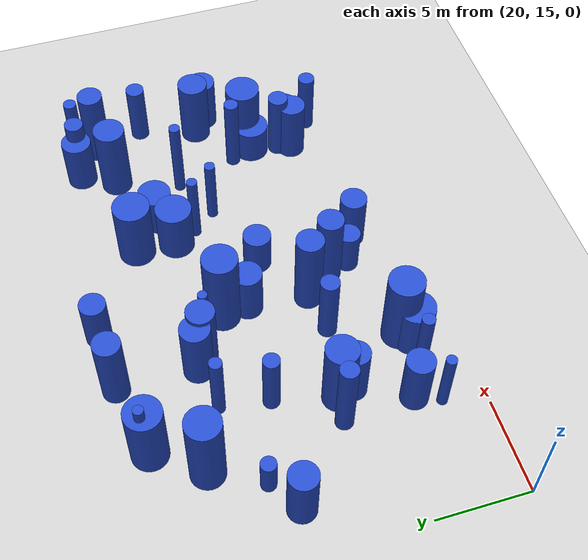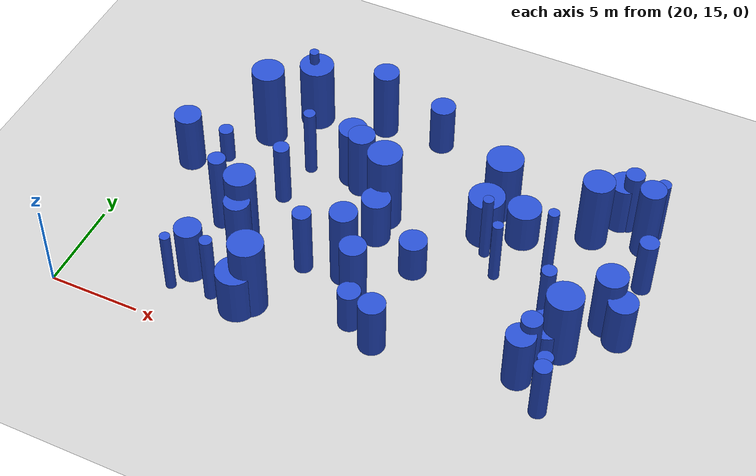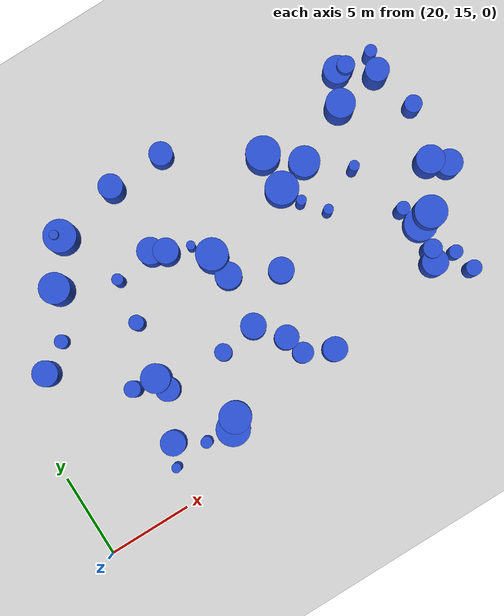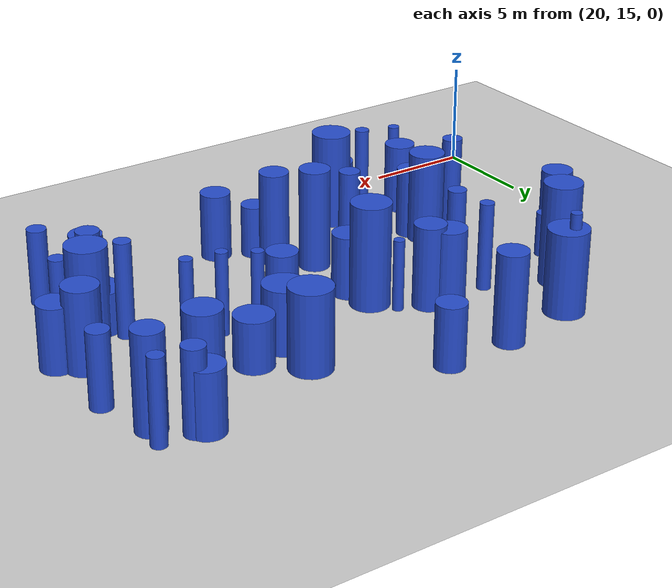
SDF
<sdf version="1.6">
 <world name="default">
  <model name="ground_plane">
   <static>1</static>
   <link name="link">
    <collision name="collision">
     <geometry><plane><normal>0 0 1</normal><size>100 100</size></plane></geometry>
     <surface><friction><ode><mu>100</mu><mu2>50</mu2></ode></friction></surface>
    </collision>
    <visual name="visual">
     <cast_shadows>0</cast_shadows>
     <geometry><plane><normal>0 0 1</normal><size>100 100</size></plane></geometry>
     <material>
      <script><uri>file://media/materials/scripts/gazebo.material</uri><name>Gazebo/Grey</name></script>
     </material>
    </visual>
   </link>
  </model>
  <model name="12">
   <static>0</static>
   <link name="link">
    <inertial>
     <mass>2</mass>
     <inertia><ixx>2.16856</ixx><ixy>0</ixy><ixz>0</ixz><iyy>2.16856</iyy><iyz>0</iyz><izz>0.502649</izz></inertia>
    </inertial>
    <collision name="collision">
     <geometry><cylinder><length>3.39167</length><radius>0.708978</radius></cylinder></geometry>
     <surface><contact><collide_without_contact>1</collide_without_contact></contact></surface>
    </collision>
    <visual name="visual">
     <geometry><cylinder><length>3.39167</length><radius>0.708978</radius></cylinder></geometry>
     <material>
      <script><uri>file://media/materials/scripts/gazebo.material</uri><name>Gazebo/Blue</name></script>
     </material>
    </visual>
    <gravity>0</gravity>
   </link>
   <pose>27.6973 21.2651 1.69583 0 -0 0</pose>
  </model>
  <model name="18">
   <static>0</static>
   <link name="link">
    <inertial>
     <mass>2</mass>
     <inertia>
      <ixx>0.856917</ixx>
      <ixy>0</ixy>
      <ixz>0</ixz>
      <iyy>0.856917</iyy>
      <iyz>0</iyz>
      <izz>0.164802</izz>
     </inertia>
    </inertial>
    <collision name="collision">
     <geometry><cylinder><length>2.15571</length><radius>0.405958</radius></cylinder></geometry>
     <surface><contact><collide_without_contact>1</collide_without_contact></contact></surface>
    </collision>
    <visual name="visual">
     <geometry><cylinder><length>2.15571</length><radius>0.405958</radius></cylinder></geometry>
     <material>
      <script><uri>file://media/materials/scripts/gazebo.material</uri><name>Gazebo/Blue</name></script>
     </material>
    </visual>
    <gravity>0</gravity>
   </link>
   <pose>23.9671 26.7785 1.07786 0 -0 0</pose>
  </model>
  <model name="22">
   <static>0</static>
   <link name="link">
    <inertial>
     <mass>2</mass>
     <inertia><ixx>1.74504</ixx><ixy>0</ixy><ixz>0</ixz><iyy>1.74504</iyy><iyz>0</iyz><izz>0.480682</izz></inertia>
    </inertial>
    <collision name="collision">
     <geometry><cylinder><length>3.00469</length><radius>0.693313</radius></cylinder></geometry>
     <surface><contact><collide_without_contact>1</collide_without_contact></contact></surface>
    </collision>
    <visual name="visual">
     <geometry><cylinder><length>3.00469</length><radius>0.693313</radius></cylinder></geometry>
     <material>
      <script><uri>file://media/materials/scripts/gazebo.material</uri><name>Gazebo/Blue</name></script>
     </material>
    </visual>
    <gravity>0</gravity>
   </link>
   <pose>34.3942 32.773 1.50235 0 -0 0</pose>
  </model>
  <model name="27">
   <static>0</static>
   <link name="link">
    <inertial>
     <mass>2</mass>
     <inertia><ixx>3.49238</ixx><ixy>0</ixy><ixz>0</ixz><iyy>3.49238</iyy><iyz>0</iyz><izz>0.155393</izz></inertia>
    </inertial>
    <collision name="collision">
     <geometry><cylinder><length>4.52638</length><radius>0.394199</radius></cylinder></geometry>
     <surface><contact><collide_without_contact>1</collide_without_contact></contact></surface>
    </collision>
    <visual name="visual">
     <geometry><cylinder><length>4.52638</length><radius>0.394199</radius></cylinder></geometry>
     <material>
      <script><uri>file://media/materials/scripts/gazebo.material</uri><name>Gazebo/Blue</name></script>
     </material>
    </visual>
    <gravity>0</gravity>
   </link>
   <pose>44.2707 22.8518 2.26319 0 -0 0</pose>
  </model>
  <model name="31">
   <static>0</static>
   <link name="link">
    <inertial>
     <mass>2</mass>
     <inertia>
      <ixx>2.64859</ixx>
      <ixy>0</ixy>
      <ixz>0</ixz>
      <iyy>2.64859</iyy>
      <iyz>0</iyz>
      <izz>0.0843179</izz>
     </inertia>
    </inertial>
    <collision name="collision">
     <geometry><cylinder><length>3.95456</length><radius>0.290376</radius></cylinder></geometry>
     <surface><contact><collide_without_contact>1</collide_without_contact></contact></surface>
    </collision>
    <visual name="visual">
     <geometry><cylinder><length>3.95456</length><radius>0.290376</radius></cylinder></geometry>
     <material>
      <script><uri>file://media/materials/scripts/gazebo.material</uri><name>Gazebo/Blue</name></script>
     </material>
    </visual>
    <gravity>0</gravity>
   </link>
   <pose>40.7251 25.0415 1.97728 0 -0 0</pose>
  </model>
  <model name="40">
   <static>0</static>
   <link name="link">
    <inertial>
     <mass>2</mass>
     <inertia><ixx>3.64768</ixx><ixy>0</ixy><ixz>0</ixz><iyy>3.64768</iyy><iyz>0</iyz><izz>0.726786</izz></inertia>
    </inertial>
    <collision name="collision">
     <geometry><cylinder><length>4.43911</length><radius>0.852518</radius></cylinder></geometry>
     <surface><contact><collide_without_contact>1</collide_without_contact></contact></surface>
    </collision>
    <visual name="visual">
     <geometry><cylinder><length>4.43911</length><radius>0.852518</radius></cylinder></geometry>
     <material>
      <script><uri>file://media/materials/scripts/gazebo.material</uri><name>Gazebo/Blue</name></script>
     </material>
    </visual>
    <gravity>0</gravity>
   </link>
   <pose>27.4642 22.1166 2.21956 0 -0 0</pose>
  </model>
  <model name="41">
   <static>0</static>
   <link name="link">
    <inertial>
     <mass>2</mass>
     <inertia><ixx>2.97421</ixx><ixy>0</ixy><ixz>0</ixz><iyy>2.97421</iyy><iyz>0</iyz><izz>0.995933</izz></inertia>
    </inertial>
    <collision name="collision">
     <geometry><cylinder><length>3.85453</length><radius>0.997964</radius></cylinder></geometry>
     <surface><contact><collide_without_contact>1</collide_without_contact></contact></surface>
    </collision>
    <visual name="visual">
     <geometry><cylinder><length>3.85453</length><radius>0.997964</radius></cylinder></geometry>
     <material>
      <script><uri>file://media/materials/scripts/gazebo.material</uri><name>Gazebo/Blue</name></script>
     </material>
    </visual>
    <gravity>0</gravity>
   </link>
   <pose>39.2735 29.6655 1.92727 0 -0 0</pose>
  </model>
  <model name="54">
   <static>0</static>
   <link name="link">
    <inertial>
     <mass>2</mass>
     <inertia><ixx>1.37638</ixx><ixy>0</ixy><ixz>0</ixz><iyy>1.37638</iyy><iyz>0</iyz><izz>0.821688</izz></inertia>
    </inertial>
    <collision name="collision">
     <geometry><cylinder><length>2.40691</length><radius>0.90647</radius></cylinder></geometry>
     <surface><contact><collide_without_contact>1</collide_without_contact></contact></surface>
    </collision>
    <visual name="visual">
     <geometry><cylinder><length>2.40691</length><radius>0.90647</radius></cylinder></geometry>
     <material>
      <script><uri>file://media/materials/scripts/gazebo.material</uri><name>Gazebo/Blue</name></script>
     </material>
    </visual>
    <gravity>0</gravity>
   </link>
   <pose>41.0887 28.1338 1.20345 0 -0 0</pose>
  </model>
  <model name="55">
   <static>0</static>
   <link name="link">
    <inertial>
     <mass>2</mass>
     <inertia><ixx>2.32083</ixx><ixy>0</ixy><ixz>0</ixz><iyy>2.32083</iyy><iyz>0</iyz><izz>0.590697</izz></inertia>
    </inertial>
    <collision name="collision">
     <geometry><cylinder><length>3.4861</length><radius>0.768568</radius></cylinder></geometry>
     <surface><contact><collide_without_contact>1</collide_without_contact></contact></surface>
    </collision>
    <visual name="visual">
     <geometry><cylinder><length>3.4861</length><radius>0.768568</radius></cylinder></geometry>
     <material>
      <script><uri>file://media/materials/scripts/gazebo.material</uri><name>Gazebo/Blue</name></script>
     </material>
    </visual>
    <gravity>0</gravity>
   </link>
   <pose>44.2646 19.3378 1.74305 0 -0 0</pose>
  </model>
  <model name="60">
   <static>0</static>
   <link name="link">
    <inertial>
     <mass>2</mass>
     <inertia><ixx>2.57815</ixx><ixy>0</ixy><ixz>0</ixz><iyy>2.57815</iyy><iyz>0</iyz><izz>0.193232</izz></inertia>
    </inertial>
    <collision name="collision">
     <geometry><cylinder><length>3.85866</length><radius>0.439582</radius></cylinder></geometry>
     <surface><contact><collide_without_contact>1</collide_without_contact></contact></surface>
    </collision>
    <visual name="visual">
     <geometry><cylinder><length>3.85866</length><radius>0.439582</radius></cylinder></geometry>
     <material>
      <script><uri>file://media/materials/scripts/gazebo.material</uri><name>Gazebo/Blue</name></script>
     </material>
    </visual>
    <gravity>0</gravity>
   </link>
   <pose>28.194 25.362 1.92933 0 -0 0</pose>
  </model>
  <model name="61">
   <static>0</static>
   <link name="link">
    <inertial>
     <mass>2</mass>
     <inertia><ixx>3.67295</ixx><ixy>0</ixy><ixz>0</ixz><iyy>3.67295</iyy><iyz>0</iyz><izz>0.479823</izz></inertia>
    </inertial>
    <collision name="collision">
     <geometry><cylinder><length>4.53853</length><radius>0.692692</radius></cylinder></geometry>
     <surface><contact><collide_without_contact>1</collide_without_contact></contact></surface>
    </collision>
    <visual name="visual">
     <geometry><cylinder><length>4.53853</length><radius>0.692692</radius></cylinder></geometry>
     <material>
      <script><uri>file://media/materials/scripts/gazebo.material</uri><name>Gazebo/Blue</name></script>
     </material>
    </visual>
    <gravity>0</gravity>
   </link>
   <pose>47.1633 30.2094 2.26926 0 -0 0</pose>
  </model>
  <model name="70">
   <static>0</static>
   <link name="link">
    <inertial>
     <mass>2</mass>
     <inertia><ixx>3.66577</ixx><ixy>0</ixy><ixz>0</ixz><iyy>3.66577</iyy><iyz>0</iyz><izz>0.497393</izz></inertia>
    </inertial>
    <collision name="collision">
     <geometry><cylinder><length>4.52796</length><radius>0.705261</radius></cylinder></geometry>
     <surface><contact><collide_without_contact>1</collide_without_contact></contact></surface>
    </collision>
    <visual name="visual">
     <geometry><cylinder><length>4.52796</length><radius>0.705261</radius></cylinder></geometry>
     <material>
      <script><uri>file://media/materials/scripts/gazebo.material</uri><name>Gazebo/Blue</name></script>
     </material>
    </visual>
    <gravity>0</gravity>
   </link>
   <pose>34.9107 20.1823 2.26398 0 -0 0</pose>
  </model>
  <model name="76">
   <static>0</static>
   <link name="link">
    <inertial>
     <mass>2</mass>
     <inertia>
      <ixx>3.85305</ixx>
      <ixy>0</ixy>
      <ixz>0</ixz>
      <iyy>3.85305</iyy>
      <iyz>0</iyz>
      <izz>0.0917923</izz>
     </inertia>
    </inertial>
    <collision name="collision">
     <geometry><cylinder><length>4.77943</length><radius>0.302972</radius></cylinder></geometry>
     <surface><contact><collide_without_contact>1</collide_without_contact></contact></surface>
    </collision>
    <visual name="visual">
     <geometry><cylinder><length>4.77943</length><radius>0.302972</radius></cylinder></geometry>
     <material>
      <script><uri>file://media/materials/scripts/gazebo.material</uri><name>Gazebo/Blue</name></script>
     </material>
    </visual>
    <gravity>0</gravity>
   </link>
   <pose>43.1827 26.3124 2.38971 0 -0 0</pose>
  </model>
  <model name="83">
   <static>0</static>
   <link name="link">
    <inertial>
     <mass>2</mass>
     <inertia><ixx>1.1459</ixx><ixy>0</ixy><ixz>0</ixz><iyy>1.1459</iyy><iyz>0</iyz><izz>0.941021</izz></inertia>
    </inertial>
    <collision name="collision">
     <geometry><cylinder><length>2.01304</length><radius>0.970062</radius></cylinder></geometry>
     <surface><contact><collide_without_contact>1</collide_without_contact></contact></surface>
    </collision>
    <visual name="visual">
     <geometry><cylinder><length>2.01304</length><radius>0.970062</radius></cylinder></geometry>
     <material>
      <script><uri>file://media/materials/scripts/gazebo.material</uri><name>Gazebo/Blue</name></script>
     </material>
    </visual>
    <gravity>0</gravity>
   </link>
   <pose>44.8178 21.6069 1.00652 0 -0 0</pose>
  </model>
  <model name="91">
   <static>0</static>
   <link name="link">
    <inertial>
     <mass>2</mass>
     <inertia><ixx>2.71113</ixx><ixy>0</ixy><ixz>0</ixz><iyy>2.71113</iyy><iyz>0</iyz><izz>0.613025</izz></inertia>
    </inertial>
    <collision name="collision">
     <geometry><cylinder><length>3.79838</length><radius>0.782959</radius></cylinder></geometry>
     <surface><contact><collide_without_contact>1</collide_without_contact></contact></surface>
    </collision>
    <visual name="visual">
     <geometry><cylinder><length>3.79838</length><radius>0.782959</radius></cylinder></geometry>
     <material>
      <script><uri>file://media/materials/scripts/gazebo.material</uri><name>Gazebo/Blue</name></script>
     </material>
    </visual>
    <gravity>0</gravity>
   </link>
   <pose>30.988 28.3636 1.89919 0 -0 0</pose>
  </model>
  <model name="92">
   <static>0</static>
   <link name="link">
    <inertial>
     <mass>2</mass>
     <inertia><ixx>2.81245</ixx><ixy>0</ixy><ixz>0</ixz><iyy>2.81245</iyy><iyz>0</iyz><izz>0.301857</izz></inertia>
    </inertial>
    <collision name="collision">
     <geometry><cylinder><length>3.99614</length><radius>0.549415</radius></cylinder></geometry>
     <surface><contact><collide_without_contact>1</collide_without_contact></contact></surface>
    </collision>
    <visual name="visual">
     <geometry><cylinder><length>3.99614</length><radius>0.549415</radius></cylinder></geometry>
     <material>
      <script><uri>file://media/materials/scripts/gazebo.material</uri><name>Gazebo/Blue</name></script>
     </material>
    </visual>
    <gravity>0</gravity>
   </link>
   <pose>44.5098 20.0687 1.99807 0 -0 0</pose>
  </model>
  <model name="97">
   <static>0</static>
   <link name="link">
    <inertial>
     <mass>2</mass>
     <inertia><ixx>1.88861</ixx><ixy>0</ixy><ixz>0</ixz><iyy>1.88861</iyy><iyz>0</iyz><izz>0.605954</izz></inertia>
    </inertial>
    <collision name="collision">
     <geometry><cylinder><length>3.08444</length><radius>0.778431</radius></cylinder></geometry>
     <surface><contact><collide_without_contact>1</collide_without_contact></contact></surface>
    </collision>
    <visual name="visual">
     <geometry><cylinder><length>3.08444</length><radius>0.778431</radius></cylinder></geometry>
     <material>
      <script><uri>file://media/materials/scripts/gazebo.material</uri><name>Gazebo/Blue</name></script>
     </material>
    </visual>
    <gravity>0</gravity>
   </link>
   <pose>47.974 23.6926 1.54222 0 -0 0</pose>
  </model>
  <model name="98">
   <static>0</static>
   <link name="link">
    <inertial>
     <mass>2</mass>
     <inertia><ixx>1.86574</ixx><ixy>0</ixy><ixz>0</ixz><iyy>1.86574</iyy><iyz>0</iyz><izz>0.667431</izz></inertia>
    </inertial>
    <collision name="collision">
     <geometry><cylinder><length>3.03186</length><radius>0.816965</radius></cylinder></geometry>
     <surface><contact><collide_without_contact>1</collide_without_contact></contact></surface>
    </collision>
    <visual name="visual">
     <geometry><cylinder><length>3.03186</length><radius>0.816965</radius></cylinder></geometry>
     <material>
      <script><uri>file://media/materials/scripts/gazebo.material</uri><name>Gazebo/Blue</name></script>
     </material>
    </visual>
    <gravity>0</gravity>
   </link>
   <pose>45.397 31.5197 1.51593 0 -0 0</pose>
  </model>
  <model name="105">
   <static>0</static>
   <link name="link">
    <inertial>
     <mass>2</mass>
     <inertia><ixx>2.88866</ixx><ixy>0</ixy><ixz>0</ixz><iyy>2.88866</iyy><iyz>0</iyz><izz>0.686861</izz></inertia>
    </inertial>
    <collision name="collision">
     <geometry><cylinder><length>3.90786</length><radius>0.828771</radius></cylinder></geometry>
     <surface><contact><collide_without_contact>1</collide_without_contact></contact></surface>
    </collision>
    <visual name="visual">
     <geometry><cylinder><length>3.90786</length><radius>0.828771</radius></cylinder></geometry>
     <material>
      <script><uri>file://media/materials/scripts/gazebo.material</uri><name>Gazebo/Blue</name></script>
     </material>
    </visual>
    <gravity>0</gravity>
   </link>
   <pose>47.0756 24.3872 1.95393 0 -0 0</pose>
  </model>
  <model name="119">
   <static>0</static>
   <link name="link">
    <inertial>
     <mass>2</mass>
     <inertia><ixx>1.78265</ixx><ixy>0</ixy><ixz>0</ixz><iyy>1.78265</iyy><iyz>0</iyz><izz>0.442677</izz></inertia>
    </inertial>
    <collision name="collision">
     <geometry><cylinder><length>3.0607</length><radius>0.66534</radius></cylinder></geometry>
     <surface><contact><collide_without_contact>1</collide_without_contact></contact></surface>
    </collision>
    <visual name="visual">
     <geometry><cylinder><length>3.0607</length><radius>0.66534</radius></cylinder></geometry>
     <material>
      <script><uri>file://media/materials/scripts/gazebo.material</uri><name>Gazebo/Blue</name></script>
     </material>
    </visual>
    <gravity>0</gravity>
   </link>
   <pose>44.3315 29.6347 1.53035 0 -0 0</pose>
  </model>
  <model name="121">
   <static>0</static>
   <link name="link">
    <inertial>
     <mass>2</mass>
     <inertia><ixx>4.12307</ixx><ixy>0</ixy><ixz>0</ixz><iyy>4.12307</iyy><iyz>0</iyz><izz>0.229508</izz></inertia>
    </inertial>
    <collision name="collision">
     <geometry><cylinder><length>4.90407</length><radius>0.47907</radius></cylinder></geometry>
     <surface><contact><collide_without_contact>1</collide_without_contact></contact></surface>
    </collision>
    <visual name="visual">
     <geometry><cylinder><length>4.90407</length><radius>0.47907</radius></cylinder></geometry>
     <material>
      <script><uri>file://media/materials/scripts/gazebo.material</uri><name>Gazebo/Blue</name></script>
     </material>
    </visual>
    <gravity>0</gravity>
   </link>
   <pose>26.0768 22.2822 2.45204 0 -0 0</pose>
  </model>
  <model name="125">
   <static>0</static>
   <link name="link">
    <inertial>
     <mass>2</mass>
     <inertia><ixx>3.0469</ixx><ixy>0</ixy><ixz>0</ixz><iyy>3.0469</iyy><iyz>0</iyz><izz>0.117307</izz></inertia>
    </inertial>
    <collision name="collision">
     <geometry><cylinder><length>4.23432</length><radius>0.342501</radius></cylinder></geometry>
     <surface><contact><collide_without_contact>1</collide_without_contact></contact></surface>
    </collision>
    <visual name="visual">
     <geometry><cylinder><length>4.23432</length><radius>0.342501</radius></cylinder></geometry>
     <material>
      <script><uri>file://media/materials/scripts/gazebo.material</uri><name>Gazebo/Blue</name></script>
     </material>
    </visual>
    <gravity>0</gravity>
   </link>
   <pose>27.9986 17.5734 2.11716 0 -0 0</pose>
  </model>
  <model name="129">
   <static>0</static>
   <link name="link">
    <inertial>
     <mass>2</mass>
     <inertia><ixx>2.30241</ixx><ixy>0</ixy><ixz>0</ixz><iyy>2.30241</iyy><iyz>0</iyz><izz>0.209643</izz></inertia>
    </inertial>
    <collision name="collision">
     <geometry><cylinder><length>3.63118</length><radius>0.457868</radius></cylinder></geometry>
     <surface><contact><collide_without_contact>1</collide_without_contact></contact></surface>
    </collision>
    <visual name="visual">
     <geometry><cylinder><length>3.63118</length><radius>0.457868</radius></cylinder></geometry>
     <material>
      <script><uri>file://media/materials/scripts/gazebo.material</uri><name>Gazebo/Blue</name></script>
     </material>
    </visual>
    <gravity>0</gravity>
   </link>
   <pose>45.9307 17.922 1.81559 0 -0 0</pose>
  </model>
  <model name="133">
   <static>0</static>
   <link name="link">
    <inertial>
     <mass>2</mass>
     <inertia><ixx>3.4341</ixx><ixy>0</ixy><ixz>0</ixz><iyy>3.4341</iyy><iyz>0</iyz><izz>0.510052</izz></inertia>
    </inertial>
    <collision name="collision">
     <geometry><cylinder><length>4.36743</length><radius>0.714179</radius></cylinder></geometry>
     <surface><contact><collide_without_contact>1</collide_without_contact></contact></surface>
    </collision>
    <visual name="visual">
     <geometry><cylinder><length>4.36743</length><radius>0.714179</radius></cylinder></geometry>
     <material>
      <script><uri>file://media/materials/scripts/gazebo.material</uri><name>Gazebo/Blue</name></script>
     </material>
    </visual>
    <gravity>0</gravity>
   </link>
   <pose>31.014 32.5884 2.18371 0 -0 0</pose>
  </model>
  <model name="135">
   <static>0</static>
   <link name="link">
    <inertial>
     <mass>2</mass>
     <inertia><ixx>3.2239</ixx><ixy>0</ixy><ixz>0</ixz><iyy>3.2239</iyy><iyz>0</iyz><izz>0.913912</izz></inertia>
    </inertial>
    <collision name="collision">
     <geometry><cylinder><length>4.07451</length><radius>0.955988</radius></cylinder></geometry>
     <surface><contact><collide_without_contact>1</collide_without_contact></contact></surface>
    </collision>
    <visual name="visual">
     <geometry><cylinder><length>4.07451</length><radius>0.955988</radius></cylinder></geometry>
     <material>
      <script><uri>file://media/materials/scripts/gazebo.material</uri><name>Gazebo/Blue</name></script>
     </material>
    </visual>
    <gravity>0</gravity>
   </link>
   <pose>27.1253 31.7575 2.03726 0 -0 0</pose>
  </model>
  <model name="136">
   <static>0</static>
   <link name="link">
    <inertial>
     <mass>2</mass>
     <inertia><ixx>1.26179</ixx><ixy>0</ixy><ixz>0</ixz><iyy>1.26179</iyy><iyz>0</iyz><izz>0.374981</izz></inertia>
    </inertial>
    <collision name="collision">
     <geometry><cylinder><length>2.53885</length><radius>0.612357</radius></cylinder></geometry>
     <surface><contact><collide_without_contact>1</collide_without_contact></contact></surface>
    </collision>
    <visual name="visual">
     <geometry><cylinder><length>2.53885</length><radius>0.612357</radius></cylinder></geometry>
     <material>
      <script><uri>file://media/materials/scripts/gazebo.material</uri><name>Gazebo/Blue</name></script>
     </material>
    </visual>
    <gravity>0</gravity>
   </link>
   <pose>35.2739 18.9705 1.26943 0 -0 0</pose>
  </model>
  <model name="138">
   <static>0</static>
   <link name="link">
    <inertial>
     <mass>2</mass>
     <inertia><ixx>2.25397</ixx><ixy>0</ixy><ixz>0</ixz><iyy>2.25397</iyy><iyz>0</iyz><izz>0.541062</izz></inertia>
    </inertial>
    <collision name="collision">
     <geometry><cylinder><length>3.44973</length><radius>0.735569</radius></cylinder></geometry>
     <surface><contact><collide_without_contact>1</collide_without_contact></contact></surface>
    </collision>
    <visual name="visual">
     <geometry><cylinder><length>3.44973</length><radius>0.735569</radius></cylinder></geometry>
     <material>
      <script><uri>file://media/materials/scripts/gazebo.material</uri><name>Gazebo/Blue</name></script>
     </material>
    </visual>
    <gravity>0</gravity>
   </link>
   <pose>26.3564 18.5234 1.72486 0 -0 0</pose>
  </model>
  <model name="143">
   <static>0</static>
   <link name="link">
    <inertial>
     <mass>2</mass>
     <inertia><ixx>3.53239</ixx><ixy>0</ixy><ixz>0</ixz><iyy>3.53239</iyy><iyz>0</iyz><izz>0.90512</izz></inertia>
    </inertial>
    <collision name="collision">
     <geometry><cylinder><length>4.29872</length><radius>0.951378</radius></cylinder></geometry>
     <surface><contact><collide_without_contact>1</collide_without_contact></contact></surface>
    </collision>
    <visual name="visual">
     <geometry><cylinder><length>4.29872</length><radius>0.951378</radius></cylinder></geometry>
     <material>
      <script><uri>file://media/materials/scripts/gazebo.material</uri><name>Gazebo/Blue</name></script>
     </material>
    </visual>
    <gravity>0</gravity>
   </link>
   <pose>45.5094 21.8679 2.14936 0 -0 0</pose>
  </model>
  <model name="145">
   <static>0</static>
   <link name="link">
    <inertial>
     <mass>2</mass>
     <inertia><ixx>2.22804</ixx><ixy>0</ixy><ixz>0</ixz><iyy>2.22804</iyy><iyz>0</iyz><izz>0.260787</izz></inertia>
    </inertial>
    <collision name="collision">
     <geometry><cylinder><length>3.54766</length><radius>0.510673</radius></cylinder></geometry>
     <surface><contact><collide_without_contact>1</collide_without_contact></contact></surface>
    </collision>
    <visual name="visual">
     <geometry><cylinder><length>3.54766</length><radius>0.510673</radius></cylinder></geometry>
     <material>
      <script><uri>file://media/materials/scripts/gazebo.material</uri><name>Gazebo/Blue</name></script>
     </material>
    </visual>
    <gravity>0</gravity>
   </link>
   <pose>47.96 27.5717 1.77383 0 -0 0</pose>
  </model>
  <model name="146">
   <static>0</static>
   <link name="link">
    <inertial>
     <mass>2</mass>
     <inertia><ixx>4.58001</ixx><ixy>0</ixy><ixz>0</ixz><iyy>4.58001</iyy><iyz>0</iyz><izz>0.876721</izz></inertia>
    </inertial>
    <collision name="collision">
     <geometry><cylinder><length>4.98497</length><radius>0.936334</radius></cylinder></geometry>
     <surface><contact><collide_without_contact>1</collide_without_contact></contact></surface>
    </collision>
    <visual name="visual">
     <geometry><cylinder><length>4.98497</length><radius>0.936334</radius></cylinder></geometry>
     <material>
      <script><uri>file://media/materials/scripts/gazebo.material</uri><name>Gazebo/Blue</name></script>
     </material>
    </visual>
    <gravity>0</gravity>
   </link>
   <pose>33.8131 26.3164 2.49248 0 -0 0</pose>
  </model>
  <model name="165">
   <static>0</static>
   <link name="link">
    <inertial>
     <mass>2</mass>
     <inertia><ixx>1.24681</ixx><ixy>0</ixy><ixz>0</ixz><iyy>1.24681</iyy><iyz>0</iyz><izz>0.164275</izz></inertia>
    </inertial>
    <collision name="collision">
     <geometry><cylinder><length>2.64349</length><radius>0.405309</radius></cylinder></geometry>
     <surface><contact><collide_without_contact>1</collide_without_contact></contact></surface>
    </collision>
    <visual name="visual">
     <geometry><cylinder><length>2.64349</length><radius>0.405309</radius></cylinder></geometry>
     <material>
      <script><uri>file://media/materials/scripts/gazebo.material</uri><name>Gazebo/Blue</name></script>
     </material>
    </visual>
    <gravity>0</gravity>
   </link>
   <pose>45.6412 19.2257 1.32174 0 -0 0</pose>
  </model>
  <model name="170">
   <static>0</static>
   <link name="link">
    <inertial>
     <mass>2</mass>
     <inertia><ixx>3.00671</ixx><ixy>0</ixy><ixz>0</ixz><iyy>3.00671</iyy><iyz>0</iyz><izz>0.251425</izz></inertia>
    </inertial>
    <collision name="collision">
     <geometry><cylinder><length>4.15764</length><radius>0.501423</radius></cylinder></geometry>
     <surface><contact><collide_without_contact>1</collide_without_contact></contact></surface>
    </collision>
    <visual name="visual">
     <geometry><cylinder><length>4.15764</length><radius>0.501423</radius></cylinder></geometry>
     <material>
      <script><uri>file://media/materials/scripts/gazebo.material</uri><name>Gazebo/Blue</name></script>
     </material>
    </visual>
    <gravity>0</gravity>
   </link>
   <pose>31.4526 21.3588 2.07882 0 -0 0</pose>
  </model>
  <model name="176">
   <static>0</static>
   <link name="link">
    <inertial>
     <mass>2</mass>
     <inertia>
      <ixx>2.98253</ixx>
      <ixy>0</ixy>
      <ixz>0</ixz>
      <iyy>2.98253</iyy>
      <iyz>0</iyz>
      <izz>0.0840111</izz>
     </inertia>
    </inertial>
    <collision name="collision">
     <geometry><cylinder><length>4.20037</length><radius>0.289847</radius></cylinder></geometry>
     <surface><contact><collide_without_contact>1</collide_without_contact></contact></surface>
    </collision>
    <visual name="visual">
     <geometry><cylinder><length>4.20037</length><radius>0.289847</radius></cylinder></geometry>
     <material>
      <script><uri>file://media/materials/scripts/gazebo.material</uri><name>Gazebo/Blue</name></script>
     </material>
    </visual>
    <gravity>0</gravity>
   </link>
   <pose>39.6881 26.2708 2.10019 0 -0 0</pose>
  </model>
  <model name="180">
   <static>0</static>
   <link name="link">
    <inertial>
     <mass>2</mass>
     <inertia><ixx>1.81639</ixx><ixy>0</ixy><ixz>0</ixz><iyy>1.81639</iyy><iyz>0</iyz><izz>0.617239</izz></inertia>
    </inertial>
    <collision name="collision">
     <geometry><cylinder><length>3.00776</length><radius>0.785645</radius></cylinder></geometry>
     <surface><contact><collide_without_contact>1</collide_without_contact></contact></surface>
    </collision>
    <visual name="visual">
     <geometry><cylinder><length>3.00776</length><radius>0.785645</radius></cylinder></geometry>
     <material>
      <script><uri>file://media/materials/scripts/gazebo.material</uri><name>Gazebo/Blue</name></script>
     </material>
    </visual>
    <gravity>0</gravity>
   </link>
   <pose>33.9865 24.8999 1.50388 0 -0 0</pose>
  </model>
  <model name="191">
   <static>0</static>
   <link name="link">
    <inertial>
     <mass>2</mass>
     <inertia><ixx>3.06221</ixx><ixy>0</ixy><ixz>0</ixz><iyy>3.06221</iyy><iyz>0</iyz><izz>0.112457</izz></inertia>
    </inertial>
    <collision name="collision">
     <geometry><cylinder><length>4.24687</length><radius>0.335345</radius></cylinder></geometry>
     <surface><contact><collide_without_contact>1</collide_without_contact></contact></surface>
    </collision>
    <visual name="visual">
     <geometry><cylinder><length>4.24687</length><radius>0.335345</radius></cylinder></geometry>
     <material>
      <script><uri>file://media/materials/scripts/gazebo.material</uri><name>Gazebo/Blue</name></script>
     </material>
    </visual>
    <gravity>0</gravity>
   </link>
   <pose>28.5854 27.954 2.12343 0 -0 0</pose>
  </model>
  <model name="194">
   <static>0</static>
   <link name="link">
    <inertial>
     <mass>2</mass>
     <inertia><ixx>2.39795</ixx><ixy>0</ixy><ixz>0</ixz><iyy>2.39795</iyy><iyz>0</iyz><izz>0.563044</izz></inertia>
    </inertial>
    <collision name="collision">
     <geometry><cylinder><length>3.5635</length><radius>0.750363</radius></cylinder></geometry>
     <surface><contact><collide_without_contact>1</collide_without_contact></contact></surface>
    </collision>
    <visual name="visual">
     <geometry><cylinder><length>3.5635</length><radius>0.750363</radius></cylinder></geometry>
     <material>
      <script><uri>file://media/materials/scripts/gazebo.material</uri><name>Gazebo/Blue</name></script>
     </material>
    </visual>
    <gravity>0</gravity>
   </link>
   <pose>22.3131 25.657 1.78175 0 -0 0</pose>
  </model>
  <model name="201">
   <static>0</static>
   <link name="link">
    <inertial>
     <mass>2</mass>
     <inertia><ixx>4.50665</ixx><ixy>0</ixy><ixz>0</ixz><iyy>4.50665</iyy><iyz>0</iyz><izz>0.813506</izz></inertia>
    </inertial>
    <collision name="collision">
     <geometry><cylinder><length>4.95977</length><radius>0.901946</radius></cylinder></geometry>
     <surface><contact><collide_without_contact>1</collide_without_contact></contact></surface>
    </collision>
    <visual name="visual">
     <geometry><cylinder><length>4.95977</length><radius>0.901946</radius></cylinder></geometry>
     <material>
      <script><uri>file://media/materials/scripts/gazebo.material</uri><name>Gazebo/Blue</name></script>
     </material>
    </visual>
    <gravity>0</gravity>
   </link>
   <pose>25.3569 29.3603 2.47989 0 -0 0</pose>
  </model>
  <model name="203">
   <static>0</static>
   <link name="link">
    <inertial>
     <mass>2</mass>
     <inertia><ixx>4.30953</ixx><ixy>0</ixy><ixz>0</ixz><iyy>4.30953</iyy><iyz>0</iyz><izz>0.540901</izz></inertia>
    </inertial>
    <collision name="collision">
     <geometry><cylinder><length>4.92285</length><radius>0.73546</radius></cylinder></geometry>
     <surface><contact><collide_without_contact>1</collide_without_contact></contact></surface>
    </collision>
    <visual name="visual">
     <geometry><cylinder><length>4.92285</length><radius>0.73546</radius></cylinder></geometry>
     <material>
      <script><uri>file://media/materials/scripts/gazebo.material</uri><name>Gazebo/Blue</name></script>
     </material>
    </visual>
    <gravity>0</gravity>
   </link>
   <pose>33.6597 21.699 2.46143 0 -0 0</pose>
  </model>
  <model name="207">
   <static>0</static>
   <link name="link">
    <inertial>
     <mass>2</mass>
     <inertia><ixx>1.96965</ixx><ixy>0</ixy><ixz>0</ixz><iyy>1.96965</iyy><iyz>0</iyz><izz>0.066463</izz></inertia>
    </inertial>
    <collision name="collision">
     <geometry><cylinder><length>3.40859</length><radius>0.257804</radius></cylinder></geometry>
     <surface><contact><collide_without_contact>1</collide_without_contact></contact></surface>
    </collision>
    <visual name="visual">
     <geometry><cylinder><length>3.40859</length><radius>0.257804</radius></cylinder></geometry>
     <material>
      <script><uri>file://media/materials/scripts/gazebo.material</uri><name>Gazebo/Blue</name></script>
     </material>
    </visual>
    <gravity>0</gravity>
   </link>
   <pose>33.0915 27.4491 1.7043 0 -0 0</pose>
  </model>
  <model name="210">
   <static>0</static>
   <link name="link">
    <inertial>
     <mass>2</mass>
     <inertia><ixx>2.96356</ixx><ixy>0</ixy><ixz>0</ixz><iyy>2.96356</iyy><iyz>0</iyz><izz>0.550999</izz></inertia>
    </inertial>
    <collision name="collision">
     <geometry><cylinder><length>4.01601</length><radius>0.742293</radius></cylinder></geometry>
     <surface><contact><collide_without_contact>1</collide_without_contact></contact></surface>
    </collision>
    <visual name="visual">
     <geometry><cylinder><length>4.01601</length><radius>0.742293</radius></cylinder></geometry>
     <material>
      <script><uri>file://media/materials/scripts/gazebo.material</uri><name>Gazebo/Blue</name></script>
     </material>
    </visual>
    <gravity>0</gravity>
   </link>
   <pose>31.7293 27.8933 2.00801 0 -0 0</pose>
  </model>
  <model name="211">
   <static>0</static>
   <link name="link">
    <inertial>
     <mass>2</mass>
     <inertia><ixx>1.9057</ixx><ixy>0</ixy><ixz>0</ixz><iyy>1.9057</iyy><iyz>0</iyz><izz>0.986749</izz></inertia>
    </inertial>
    <collision name="collision">
     <geometry><cylinder><length>2.91101</length><radius>0.993353</radius></cylinder></geometry>
     <surface><contact><collide_without_contact>1</collide_without_contact></contact></surface>
    </collision>
    <visual name="visual">
     <geometry><cylinder><length>2.91101</length><radius>0.993353</radius></cylinder></geometry>
     <material>
      <script><uri>file://media/materials/scripts/gazebo.material</uri><name>Gazebo/Blue</name></script>
     </material>
    </visual>
    <gravity>0</gravity>
   </link>
   <pose>29.6267 17.389 1.4555 0 -0 0</pose>
  </model>
  <model name="218">
   <static>0</static>
   <link name="link">
    <inertial>
     <mass>2</mass>
     <inertia><ixx>2.73257</ixx><ixy>0</ixy><ixz>0</ixz><iyy>2.73257</iyy><iyz>0</iyz><izz>0.265062</izz></inertia>
    </inertial>
    <collision name="collision">
     <geometry><cylinder><length>3.94971</length><radius>0.514842</radius></cylinder></geometry>
     <surface><contact><collide_without_contact>1</collide_without_contact></contact></surface>
    </collision>
    <visual name="visual">
     <geometry><cylinder><length>3.94971</length><radius>0.514842</radius></cylinder></geometry>
     <material>
      <script><uri>file://media/materials/scripts/gazebo.material</uri><name>Gazebo/Blue</name></script>
     </material>
    </visual>
    <gravity>0</gravity>
   </link>
   <pose>45.8644 31.4262 1.97486 0 -0 0</pose>
  </model>
  <model name="219">
   <static>0</static>
   <link name="link">
    <inertial>
     <mass>2</mass>
     <inertia><ixx>2.01383</ixx><ixy>0</ixy><ixz>0</ixz><iyy>2.01383</iyy><iyz>0</iyz><izz>0.96174</izz></inertia>
    </inertial>
    <collision name="collision">
     <geometry><cylinder><length>3.03278</length><radius>0.980683</radius></cylinder></geometry>
     <surface><contact><collide_without_contact>1</collide_without_contact></contact></surface>
    </collision>
    <visual name="visual">
     <geometry><cylinder><length>3.03278</length><radius>0.980683</radius></cylinder></geometry>
     <material>
      <script><uri>file://media/materials/scripts/gazebo.material</uri><name>Gazebo/Blue</name></script>
     </material>
    </visual>
    <gravity>0</gravity>
   </link>
   <pose>39.1737 27.4911 1.51639 0 -0 0</pose>
  </model>
  <model name="221">
   <static>0</static>
   <link name="link">
    <inertial>
     <mass>2</mass>
     <inertia><ixx>1.18725</ixx><ixy>0</ixy><ixz>0</ixz><iyy>1.18725</iyy><iyz>0</iyz><izz>0.565882</izz></inertia>
    </inertial>
    <collision name="collision">
     <geometry><cylinder><length>2.32934</length><radius>0.752251</radius></cylinder></geometry>
     <surface><contact><collide_without_contact>1</collide_without_contact></contact></surface>
    </collision>
    <visual name="visual">
     <geometry><cylinder><length>2.32934</length><radius>0.752251</radius></cylinder></geometry>
     <material>
      <script><uri>file://media/materials/scripts/gazebo.material</uri><name>Gazebo/Blue</name></script>
     </material>
    </visual>
    <gravity>0</gravity>
   </link>
   <pose>36.7152 23.5989 1.16467 0 -0 0</pose>
  </model>
  <model name="230">
   <static>0</static>
   <link name="link">
    <inertial>
     <mass>2</mass>
     <inertia>
      <ixx>2.46786</ixx>
      <ixy>0</ixy>
      <ixz>0</ixz>
      <iyy>2.46786</iyy>
      <iyz>0</iyz>
      <izz>0.0789834</izz>
     </inertia>
    </inertial>
    <collision name="collision">
     <geometry><cylinder><length>3.8171</length><radius>0.28104</radius></cylinder></geometry>
     <surface><contact><collide_without_contact>1</collide_without_contact></contact></surface>
    </collision>
    <visual name="visual">
     <geometry><cylinder><length>3.8171</length><radius>0.28104</radius></cylinder></geometry>
     <material>
      <script><uri>file://media/materials/scripts/gazebo.material</uri><name>Gazebo/Blue</name></script>
     </material>
    </visual>
    <gravity>0</gravity>
   </link>
   <pose>25.7942 17.2502 1.90855 0 -0 0</pose>
  </model>
  <model name="237">
   <static>0</static>
   <link name="link">
    <inertial>
     <mass>2</mass>
     <inertia><ixx>3.88565</ixx><ixy>0</ixy><ixz>0</ixz><iyy>3.88565</iyy><iyz>0</iyz><izz>0.069964</izz></inertia>
    </inertial>
    <collision name="collision">
     <geometry><cylinder><length>4.80666</length><radius>0.264507</radius></cylinder></geometry>
     <surface><contact><collide_without_contact>1</collide_without_contact></contact></surface>
    </collision>
    <visual name="visual">
     <geometry><cylinder><length>4.80666</length><radius>0.264507</radius></cylinder></geometry>
     <material>
      <script><uri>file://media/materials/scripts/gazebo.material</uri><name>Gazebo/Blue</name></script>
     </material>
    </visual>
    <gravity>0</gravity>
   </link>
   <pose>26.8976 31.9292 2.40333 0 -0 0</pose>
  </model>
  <model name="242">
   <static>0</static>
   <link name="link">
    <inertial>
     <mass>2</mass>
     <inertia><ixx>3.59243</ixx><ixy>0</ixy><ixz>0</ixz><iyy>3.59243</iyy><iyz>0</iyz><izz>0.726061</izz></inertia>
    </inertial>
    <collision name="collision">
     <geometry><cylinder><length>4.40186</length><radius>0.852092</radius></cylinder></geometry>
     <surface><contact><collide_without_contact>1</collide_without_contact></contact></surface>
    </collision>
    <visual name="visual">
     <geometry><cylinder><length>4.40186</length><radius>0.852092</radius></cylinder></geometry>
     <material>
      <script><uri>file://media/materials/scripts/gazebo.material</uri><name>Gazebo/Blue</name></script>
     </material>
    </visual>
    <gravity>0</gravity>
   </link>
   <pose>44.4245 29.7088 2.20093 0 -0 0</pose>
  </model>
  <model name="243">
   <static>0</static>
   <link name="link">
    <inertial>
     <mass>2</mass>
     <inertia><ixx>2.03166</ixx><ixy>0</ixy><ixz>0</ixz><iyy>2.03166</iyy><iyz>0</iyz><izz>0.515448</izz></inertia>
    </inertial>
    <collision name="collision">
     <geometry><cylinder><length>3.26246</length><radius>0.717947</radius></cylinder></geometry>
     <surface><contact><collide_without_contact>1</collide_without_contact></contact></surface>
    </collision>
    <visual name="visual">
     <geometry><cylinder><length>3.26246</length><radius>0.717947</radius></cylinder></geometry>
     <material>
      <script><uri>file://media/materials/scripts/gazebo.material</uri><name>Gazebo/Blue</name></script>
     </material>
    </visual>
    <gravity>0</gravity>
   </link>
   <pose>36.8996 18.18 1.63123 0 -0 0</pose>
  </model>
  <model name="247">
   <static>0</static>
   <link name="link">
    <inertial>
     <mass>2</mass>
     <inertia><ixx>4.09541</ixx><ixy>0</ixy><ixz>0</ixz><iyy>4.09541</iyy><iyz>0</iyz><izz>0.884634</izz></inertia>
    </inertial>
    <collision name="collision">
     <geometry><cylinder><length>4.68172</length><radius>0.94055</radius></cylinder></geometry>
     <surface><contact><collide_without_contact>1</collide_without_contact></contact></surface>
    </collision>
    <visual name="visual">
     <geometry><cylinder><length>4.68172</length><radius>0.94055</radius></cylinder></geometry>
     <material>
      <script><uri>file://media/materials/scripts/gazebo.material</uri><name>Gazebo/Blue</name></script>
     </material>
    </visual>
    <gravity>0</gravity>
   </link>
   <pose>30.1005 17.9169 2.34086 0 -0 0</pose>
  </model>
  <model name="248">
   <static>0</static>
   <link name="link">
    <inertial>
     <mass>2</mass>
     <inertia><ixx>2.70177</ixx><ixy>0</ixy><ixz>0</ixz><iyy>2.70177</iyy><iyz>0</iyz><izz>0.130531</izz></inertia>
    </inertial>
    <collision name="collision">
     <geometry><cylinder><length>3.97731</length><radius>0.36129</radius></cylinder></geometry>
     <surface><contact><collide_without_contact>1</collide_without_contact></contact></surface>
    </collision>
    <visual name="visual">
     <geometry><cylinder><length>3.97731</length><radius>0.36129</radius></cylinder></geometry>
     <material>
      <script><uri>file://media/materials/scripts/gazebo.material</uri><name>Gazebo/Blue</name></script>
     </material>
    </visual>
    <gravity>0</gravity>
   </link>
   <pose>47.4611 31.3452 1.98866 0 -0 0</pose>
  </model>
 </world>
</sdf>
